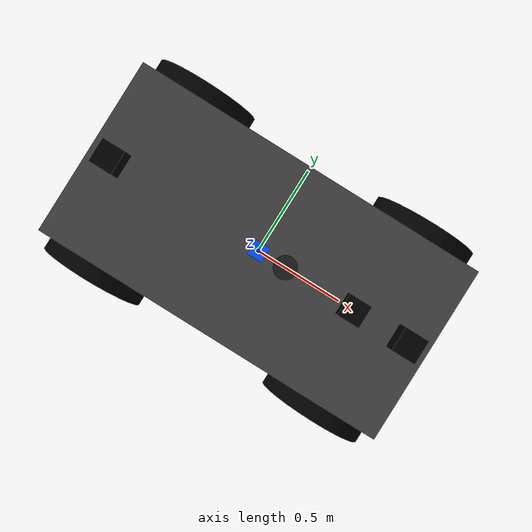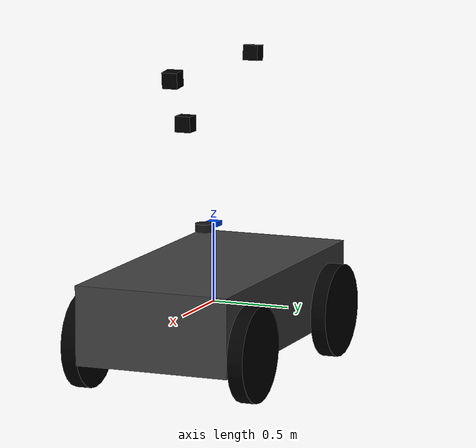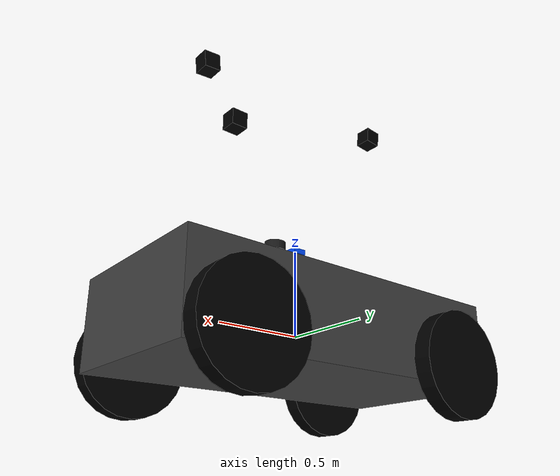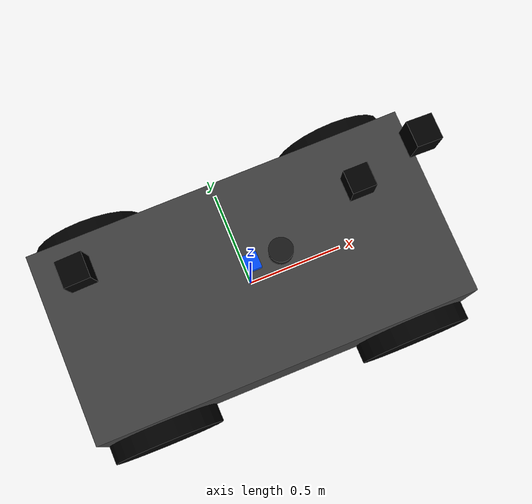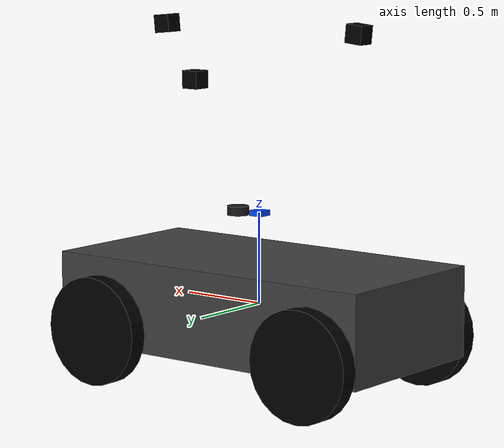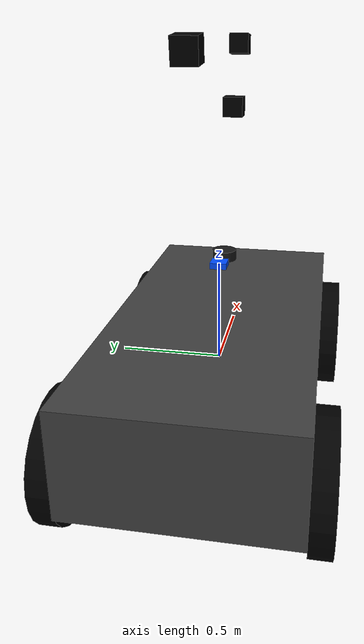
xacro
<?xml version="1.0"?>

<robot name="ackermann_steering_vehicle" xmlns:xacro="http://www.ros.org/wiki/xacro">

  <!-- Arguments -->
  <xacro:arg name="body_length" default="2.0" />
  <xacro:arg name="body_width" default="1.0" />
  <xacro:arg name="body_height" default="0.5" />
  <xacro:arg name="body_density" default="1000.0" />
  <xacro:arg name="wheel_radius" default="0.3" />
  <xacro:arg name="wheel_width" default="0.1" />
  <xacro:arg name="wheel_density" default="1000.0" />
  <xacro:arg name="max_steering_angle" default="0.6108" />
  <xacro:arg name="max_steering_angular_velocity" default="1.570796" />
  <xacro:arg name="max_steering_effort" default="1.0" />
  <xacro:arg name="max_velocity" default="1.0" />
  <xacro:arg name="max_effort" default="10.0" />
  <xacro:arg name="camera_box_size" default="0.1" />
  <xacro:arg name="camera_height" default="1.5" />
  <xacro:arg name="camera_pitch" default="0.1" />
  <xacro:arg name="camera_setback" default="0.3" />
  <xacro:arg name="camera_fov" default="1.396263" />
  <xacro:arg name="camera_fps" default="30" />
  <xacro:arg name="image_width" default="640" />
  <xacro:arg name="image_height" default="480" />
  <xacro:arg name="object_camera_height" default="1.2" />
  <xacro:arg name="object_camera_pitch" default="0.0" />
  <xacro:arg name="object_camera_setback" default="0.5" />
  <xacro:arg name="object_camera_fov" default="1.2217305" />

  <!-- Mathematical Constants -->
  <xacro:property name="PI" value="3.14159265"/>

  <!-- Vehicle Properties -->
  <xacro:property name="body_length" value="$(arg body_length)"/>
  <xacro:property name="body_width" value="$(arg body_width)"/>
  <xacro:property name="body_height" value="$(arg body_height)"/>
  <xacro:property name="body_density" value="$(arg body_density)"/>
  <xacro:property name="wheel_radius" value="$(arg wheel_radius)"/>
  <xacro:property name="wheel_width" value="$(arg wheel_width)"/>
  <xacro:property name="wheel_density" value="$(arg wheel_density)"/>
  <xacro:property name="max_steering_angle" value="$(arg max_steering_angle)"/>
  <xacro:property name="max_steering_angular_velocity" value="$(arg max_steering_angular_velocity)"/>
  <xacro:property name="max_steering_effort" value="$(arg max_steering_effort)"/>
  <xacro:property name="max_velocity" value="$(arg max_velocity)"/>
  <xacro:property name="max_effort" value="$(arg max_effort)"/>
  <xacro:property name="camera_box_size" value="$(arg camera_box_size)"/>
  <xacro:property name="camera_height" value="$(arg camera_height)"/>
  <xacro:property name="camera_pitch" value="$(arg camera_pitch)"/>
  <xacro:property name="camera_setback" value="$(arg camera_setback)"/>
  <xacro:property name="camera_fov" value="$(arg camera_fov)"/>
  <xacro:property name="camera_fps" value="$(arg camera_fps)"/>
  <xacro:property name="image_width" value="$(arg image_width)"/>
  <xacro:property name="image_height" value="$(arg image_height)"/>
  <xacro:property name="object_camera_height" value="$(arg object_camera_height)"/>
  <xacro:property name="object_camera_pitch" value="$(arg object_camera_pitch)"/>
  <xacro:property name="object_camera_setback" value="$(arg object_camera_setback)"/>
  <xacro:property name="object_camera_fov" value="$(arg object_camera_fov)"/>

  <xacro:property name="body_mass" value="${body_density * body_length * body_height * body_width}"/>
  <xacro:property name="body_inertia_x" value="${1.0/12.0 * body_mass * (body_height*body_height + body_width*body_width)}"/>
  <xacro:property name="body_inertia_y" value="${1.0/12.0 * body_mass * (body_length*body_length + body_height*body_height)}"/>
  <xacro:property name="body_inertia_z" value="${1.0/12.0 * body_mass * (body_length*body_length + body_width*body_width)}"/>
  <xacro:property name="wheel_separation" value="${body_width + wheel_width}"/>
  <xacro:property name="wheel_offset" value="${body_length/2 - wheel_radius}"/>
  <xacro:property name="wheel_mass" value="${wheel_density * PI * wheel_radius * wheel_radius * wheel_width}"/>
  <xacro:property name="wheel_inertia_x" value="${1.0/12.0 * wheel_mass * (3*wheel_radius*wheel_radius + wheel_width*wheel_width)}"/>
  <xacro:property name="wheel_inertia_y" value="${1.0/12.0 * wheel_mass * (3*wheel_radius*wheel_radius + wheel_width*wheel_width)}"/>
  <xacro:property name="wheel_inertia_z" value="${1.0/2.0 * wheel_mass * wheel_radius * wheel_radius}"/>
  <xacro:property name="max_wheel_angular_velocity" value="${max_velocity / wheel_radius}"/>

  <!-- Links -->

  <!-- Body Link -->
  <link name="body_link">
    <visual>
      <origin xyz="0.0 0.0 0.0" rpy="0.0 0.0 0.0"/>
      <geometry>
        <box size="${body_length} ${body_width} ${body_height}"/>
      </geometry>
      <material name="body_material">
        <color rgba="0.25 0.25 0.25 1.0"/>
      </material>
    </visual>
    <collision>
      <origin xyz="0.0 0.0 0.0" rpy="0.0 0.0 0.0"/>
      <geometry>
        <box size="${body_length} ${body_width} ${body_height}"/>
      </geometry>
    </collision>
    <inertial>
      <mass value="${body_mass}"/>
      <inertia ixx="${body_inertia_x}" ixy="0.0" ixz="0.0" iyy="${body_inertia_y}" iyz="0" izz="${body_inertia_z}"/>
      <origin xyz="0 0 0" rpy="0 0 0"/>
    </inertial>
  </link>

  <!-- Front Left Wheel -->
  <link name="front_left_wheel_link">
    <visual>
      <origin xyz="0.0 0.0 0.0" rpy="1.570795 0.0 0.0"/>
      <geometry>
        <cylinder radius="${wheel_radius}" length="${wheel_width}"/>
      </geometry>
      <material name="wheel_material">
        <color rgba="0.0 0.0 0.0 1.0"/>
      </material>
    </visual>
    <collision>
      <origin xyz="0.0 0.0 0.0" rpy="1.570795 0.0 0.0"/>
      <geometry>
        <cylinder radius="${wheel_radius}" length="${wheel_width}"/>
      </geometry>
    </collision>
    <inertial>
      <mass value="${wheel_mass}"/>
      <inertia ixx="${wheel_inertia_x}" ixy="0.0" ixz="0.0" iyy="${wheel_inertia_y}" iyz="0" izz="${wheel_inertia_z}"/>
      <origin xyz="0.0 0.0 0.0" rpy="1.570795 0.0 0.0"/>
    </inertial>
  </link>

    <!-- Front Left Wheel Steering -->
  <link name="front_left_steering_link">
    <visual>
      <origin xyz="0.0 0.0 0.0" rpy="1.570795 0.0 0.0"/>
      <geometry>
        <cylinder length="0.001" radius="0.01"/>
      </geometry>
      <material name="wheel_material">
        <color rgba="0.0 0.0 0.0 1.0"/>
      </material>
    </visual>
    <collision>
      <origin xyz="0.0 0.0 0.0" rpy="1.570795 0.0 0.0"/>
      <geometry>
        <cylinder length="0.001" radius="0.01"/>
      </geometry>
    </collision>
    <inertial>
      <mass value="0.01"/>
      <inertia ixx="0.0" ixy="0.0" ixz="0.0" iyy="0.0" iyz="0.0" izz="0.0"/>
      <origin xyz="0.0 0.0 0.0" rpy="1.570795 0.0 0.0"/>
    </inertial>
  </link>

  <!-- Front Right Wheel -->
  <link name="front_right_wheel_link">
    <visual>
      <origin xyz="0.0 0.0 0.0" rpy="1.570795 0.0 0.0"/>
      <geometry>
        <cylinder radius="${wheel_radius}" length="${wheel_width}"/>
      </geometry>
      <material name="wheel_material">
        <color rgba="0.0 0.0 0.0 1.0"/>
      </material>
    </visual>
    <collision>
      <origin xyz="0.0 0.0 0.0" rpy="1.570795 0.0 0.0"/>
      <geometry>
        <cylinder radius="${wheel_radius}" length="${wheel_width}"/>
      </geometry>
    </collision>
    <inertial>
      <mass value="${wheel_mass}"/>
      <inertia ixx="${wheel_inertia_x}" ixy="0.0" ixz="0.0" iyy="${wheel_inertia_y}" iyz="0" izz="${wheel_inertia_z}"/>
      <origin xyz="0.0 0.0 0.0" rpy="1.570795 0.0 0.0"/>
    </inertial>
  </link>

  <!-- Front Right Wheel Steering -->
  <link name="front_right_steering_link">
    <visual>
      <origin xyz="0.0 0.0 0.0" rpy="1.570795 0.0 0.0"/>
      <geometry>
        <cylinder length="0.001" radius="0.01"/>
      </geometry>
      <material name="wheel_material">
        <color rgba="0.0 0.0 0.0 1.0"/>
      </material>
    </visual>
    <collision>
      <origin xyz="0.0 0.0 0.0" rpy="1.570795 0.0 0.0"/>
      <geometry>
        <cylinder length="0.001" radius="0.01"/>
      </geometry>
    </collision>
    <inertial>
      <mass value="0.01"/>
      <inertia ixx="0.0" ixy="0.0" ixz="0.0" iyy="0.0" iyz="0.0" izz="0.0"/>
      <origin xyz="0.0 0.0 0.0" rpy="1.570795 0.0 0.0"/>
    </inertial>
  </link>

  <!-- Rear Left Wheel -->
  <link name="rear_left_wheel_link">
    <visual>
      <origin xyz="0.0 0.0 0.0" rpy="1.570795 0.0 0.0"/>
      <geometry>
        <cylinder radius="${wheel_radius}" length="${wheel_width}"/>
      </geometry>
      <material name="wheel_material">
        <color rgba="0.0 0.0 0.0 1.0"/>
      </material>
    </visual>
    <collision>
      <origin xyz="0.0 0.0 0.0" rpy="1.570795 0.0 0.0"/>
      <geometry>
        <cylinder radius="${wheel_radius}" length="${wheel_width}"/>
      </geometry>
    </collision>
    <inertial>
      <mass value="2"/>
      <inertia ixx="${wheel_inertia_x}" ixy="0.0" ixz="0.0" iyy="${wheel_inertia_y}" iyz="0" izz="${wheel_inertia_z}"/>
      <origin xyz="0.0 0.0 0.0" rpy="1.570795 0.0 0.0"/>
    </inertial>
  </link>

  <!-- Rear Right Wheel -->
  <link name="rear_right_wheel_link">
    <visual>
      <origin xyz="0.0 0.0 0.0" rpy="1.570795 0.0 0.0"/>
      <geometry>
        <cylinder radius="${wheel_radius}" length="${wheel_width}"/>
      </geometry>
      <material name="wheel_material">
        <color rgba="0.0 0.0 0.0 1.0"/>
      </material>
    </visual>
    <collision>
      <origin xyz="0.0 0.0 0.0" rpy="1.570795 0.0 0.0"/>
      <geometry>
        <cylinder radius="${wheel_radius}" length="${wheel_width}"/>
      </geometry>
    </collision>
    <inertial>
      <mass value="2"/>
      <inertia ixx="${wheel_inertia_x}" ixy="0.0" ixz="0.0" iyy="${wheel_inertia_y}" iyz="0" izz="${wheel_inertia_z}"/>
      <origin xyz="0.0 0.0 0.0" rpy="1.570795 0.0 0.0"/>
    </inertial>
  </link>

  <!-- Camera Link -->
  <link name="camera_link">
    <collision>
      <origin xyz="0 0 0" rpy="0 0 0"/>
      <geometry>
        <box size="${camera_box_size} ${camera_box_size} ${camera_box_size}"/>
      </geometry>
    </collision>

    <visual>
      <origin xyz="0 0 0" rpy="0 0 0"/>
      <geometry>
        <box size="${camera_box_size} ${camera_box_size} ${camera_box_size}"/>
      </geometry>

      <material name="camera_material">
        <color rgba="0.0 0.0 0.0 1.0"/>
      </material>
    </visual>

    <inertial>
      <mass value="1e-5" />
      <origin xyz="0 0 0" rpy="0 0 0"/>
      <inertia ixx="1e-6" ixy="0" ixz="0" iyy="1e-6" iyz="0" izz="1e-6" />
    </inertial>
  </link>

  <!-- Object Detection Camera Link (normal 70 deg hfov, front-facing) -->
  <link name="object_camera_link">
    <collision>
      <origin xyz="0 0 0" rpy="0 0 0"/>
      <geometry>
        <box size="${camera_box_size} ${camera_box_size} ${camera_box_size}"/>
      </geometry>
    </collision>

    <visual>
      <origin xyz="0 0 0" rpy="0 0 0"/>
      <geometry>
        <box size="${camera_box_size} ${camera_box_size} ${camera_box_size}"/>
      </geometry>

      <material name="object_camera_material">
        <color rgba="0.0 0.0 0.0 1.0"/>
      </material>
    </visual>

    <inertial>
      <mass value="1e-5" />
      <origin xyz="0 0 0" rpy="0 0 0"/>
      <inertia ixx="1e-6" ixy="0" ixz="0" iyy="1e-6" iyz="0" izz="1e-6" />
    </inertial>
  </link>

  <!-- Rear Camera Link -->
  <link name="rear_camera_link">
    <collision>
      <origin xyz="0 0 0" rpy="0 0 0"/>
      <geometry>
        <box size="${camera_box_size} ${camera_box_size} ${camera_box_size}"/>
      </geometry>
    </collision>

    <visual>
      <origin xyz="0 0 0" rpy="0 0 0"/>
      <geometry>
        <box size="${camera_box_size} ${camera_box_size} ${camera_box_size}"/>
      </geometry>

      <material name="rear_camera_material">
        <color rgba="0.0 0.0 0.0 1.0"/>
      </material>
    </visual>

    <inertial>
      <mass value="1e-5" />
      <origin xyz="0 0 0" rpy="0 0 0"/>
      <inertia ixx="1e-6" ixy="0" ixz="0" iyy="1e-6" iyz="0" izz="1e-6" />
    </inertial>
  </link>

  <link name="lidar_link">
    <visual>
      <origin xyz="0 0 0" rpy="0 0 0"/>
      <geometry>
        <cylinder radius="0.06" length="0.05"/>
      </geometry>
      <material name="lidar_material">
        <color rgba="0.1 0.1 0.1 1.0"/>
      </material>
    </visual>

    <collision>
      <origin xyz="0 0 0" rpy="0 0 0"/>
      <geometry>
        <cylinder radius="0.06" length="0.05"/>
      </geometry>
    </collision>

    <inertial>
      <mass value="0.1"/>
      <origin xyz="0 0 0" rpy="0 0 0"/>
      <inertia ixx="1e-4" ixy="0" ixz="0" iyy="1e-4" iyz="0" izz="1e-4"/>
    </inertial>
  </link>

  <link name="gps_link">
    <visual>
      <origin xyz="0 0 0" rpy="0 0 0"/>
      <geometry>
        <box size="0.08 0.08 0.03"/>
      </geometry>
      <material name="gps_material">
        <color rgba="0.0 0.3 1.0 1.0"/>
      </material>
    </visual>

    <collision>
      <origin xyz="0 0 0" rpy="0 0 0"/>
      <geometry>
        <box size="0.08 0.08 0.03"/>
      </geometry>
    </collision>

    <inertial>
      <mass value="0.05"/>
      <origin xyz="0 0 0" rpy="0 0 0"/>
      <inertia ixx="1e-5" ixy="0" ixz="0" iyy="1e-5" iyz="0" izz="1e-5"/>
    </inertial>
  </link>

<!-- GPS Fixed Joint -->
  <joint name="gps_joint" type="fixed">
    <origin xyz="0 0 ${body_height/2 + 0.25}" rpy="0 0 0"/>
    <parent link="body_link"/>
    <child link="gps_link"/>
  </joint>

<!-- LiDAR Fixed Joint -->
  <joint name="lidar_joint" type="fixed">
    <origin xyz="0.15 0 ${body_height/2 + 0.25}" rpy="0 0 0"/>
    <parent link="body_link"/>
    <child link="lidar_link"/>
  </joint>

  <!-- Joints -->

  <!-- Front Left Steering Joint -->
  <joint name="front_left_steering_joint" type="revolute">
    <origin xyz="${wheel_offset} ${wheel_separation/2} -${wheel_radius/2}" rpy="0 0 0"/>
    <parent link="body_link"/>
    <child link="front_left_steering_link"/>
    <axis xyz="0 0 1"/>
    <limit effort="${max_steering_effort}" lower="${-max_steering_angle}" upper="${max_steering_angle}" velocity="${max_steering_angular_velocity}"/>
    <dynamics damping="0.1" friction="0.1"/>
  </joint>

  <!-- Front Left Wheel Joint -->
  <joint name="front_left_wheel_joint" type="continuous">
    <origin xyz="0 0 0" rpy="0 0 0"/>
    <parent link="front_left_steering_link"/>
    <child link="front_left_wheel_link"/>
    <axis xyz="0 1 0"/>
    <limit effort="${max_effort}" velocity="${max_wheel_angular_velocity}"/>
    <dynamics damping="0.1" friction="0.1"/>
  </joint>

  <!-- Front Right Steering Joint -->
  <joint name="front_right_steering_joint" type="revolute">
    <origin xyz="${wheel_offset} ${-wheel_separation/2} -${wheel_radius/2}" rpy="0 0 0"/>
    <parent link="body_link"/>
    <child link="front_right_steering_link"/>
    <axis xyz="0 0 1"/>
    <limit effort="${max_steering_effort}" lower="${-max_steering_angle}" upper="${max_steering_angle}" velocity="${max_steering_angular_velocity}"/>
    <dynamics damping="0.1" friction="0.1"/>
  </joint>

  <!-- Front Right Wheel Joint -->
  <joint name="front_right_wheel_joint" type="continuous">
    <origin xyz="0 0 0" rpy="0 0 0"/>
    <parent link="front_right_steering_link"/>
    <child link="front_right_wheel_link"/>
    <axis xyz="0 1 0"/>
    <limit effort="${max_effort}" velocity="${max_wheel_angular_velocity}"/>
    <dynamics damping="0.1" friction="0.1"/>
  </joint>

  <!-- Rear Left Wheel Joint -->
  <joint name="rear_left_wheel_joint" type="continuous">
    <origin xyz="-${wheel_offset} ${wheel_separation/2} -${wheel_radius/2}" rpy="0 0 0"/>
    <parent link="body_link"/>
    <child link="rear_left_wheel_link"/>
    <axis xyz="0 1 0"/>
    <limit effort="${max_effort}" velocity="${max_wheel_angular_velocity}"/>
    <dynamics damping="0.1" friction="0.1"/>
  </joint>

  <!-- Rear Right Wheel Joint -->
  <joint name="rear_right_wheel_joint" type="continuous">
    <origin xyz="-${wheel_offset} ${-wheel_separation/2} -${wheel_radius/2}" rpy="0 0 0"/>
    <parent link="body_link"/>
    <child link="rear_right_wheel_link"/>
    <axis xyz="0 1 0"/>
    <limit effort="${max_effort}" velocity="${max_wheel_angular_velocity}"/>
    <dynamics damping="0.1" friction="0.1"/>
  </joint>

  <!-- Camera Joint -->
  <joint name="camera_joint" type="fixed">
    <axis xyz="0 1 0" />
    <origin xyz="${body_length/2 - camera_box_size/2 - camera_setback} 0.0 ${camera_height}" rpy="0 ${camera_pitch} 0"/>
    <parent link="body_link"/>
    <child link="camera_link"/>
  </joint>

  <!-- Object Detection Camera Joint -->
  <joint name="object_camera_joint" type="fixed">
    <axis xyz="0 1 0" />
    <origin xyz="${body_length/2 - camera_box_size/2 - object_camera_setback} 0.0 ${object_camera_height}" rpy="0 ${object_camera_pitch} 0"/>
    <parent link="body_link"/>
    <child link="object_camera_link"/>
  </joint>

  <!-- Rear Camera Joint -->
  <joint name="rear_camera_joint" type="fixed">
    <axis xyz="0 1 0" />
    <origin xyz="${-(body_length/2 - camera_box_size/2 - camera_setback)} 0.0 ${camera_height}" rpy="0 ${camera_pitch} ${PI}"/>
    <parent link="body_link"/>
    <child link="rear_camera_link"/>
  </joint>

  <gazebo reference="body_link">
    <mu1>0.0001</mu1>
    <mu2>0.0001</mu2>
  </gazebo>

  <gazebo reference="front_right_wheel_link">
    <mu1>100.0</mu1>
    <mu2>100.0</mu2>
  </gazebo>

  <gazebo reference="front_left_wheel_link">
    <mu1>100.0</mu1>
    <mu2>100.0</mu2>
  </gazebo>

  <gazebo reference="rear_right_wheel_link">
    <mu1>100.0</mu1>
    <mu2>100.0</mu2>
  </gazebo>

  <gazebo reference="rear_left_wheel_link">
    <mu1>100.0</mu1>
    <mu2>100.0</mu2>
  </gazebo>

  <!-- Gazebo Control -->
  <ros2_control name="control" type="system">
    <hardware>
      <plugin>gz_ros2_control/GazeboSimSystem</plugin>
    </hardware>

    <joint name="front_left_steering_joint">
      <command_interface name="position">
        <param name="min">${-max_steering_angle}</param>
        <param name="max">${max_steering_angle}</param>
      </command_interface>

      <state_interface name="position"/>
      <state_interface name="velocity"/>
      <state_interface name="effort"/>
    </joint>

    <joint name="front_right_steering_joint">
      <command_interface name="position">
        <param name="min">${-max_steering_angle}</param>
        <param name="max">${max_steering_angle}</param>
      </command_interface>

      <state_interface name="position"/>
      <state_interface name="velocity"/>
      <state_interface name="effort"/>
    </joint>

    <joint name="rear_left_wheel_joint">
      <command_interface name="velocity">
        <param name="min">${-max_wheel_angular_velocity}</param>
        <param name="max">${max_wheel_angular_velocity}</param>
      </command_interface>

      <state_interface name="position"/>
      <state_interface name="velocity"/>
      <state_interface name="effort"/>
    </joint>

    <joint name="rear_right_wheel_joint">
      <command_interface name="velocity">
        <param name="min">${-max_wheel_angular_velocity}</param>
        <param name="max">${max_wheel_angular_velocity}</param>
      </command_interface>

      <state_interface name="position"/>
      <state_interface name="velocity"/>
      <state_interface name="effort"/>
    </joint>
  </ros2_control>

  <!-- Gazebo Plugins -->
  <gazebo>
    <plugin filename="gz_ros2_control-system" name="gz_ros2_control::GazeboSimROS2ControlPlugin">
      <parameters>$(find auto_vehicle)/config/gz_ros2_control.yaml</parameters>
    </plugin>

    <plugin filename="gz-sim-sensors-system" name="gz::sim::systems::Sensors">
      <render_engine>ogre2</render_engine>
    </plugin>

    <plugin filename="gz-sim-imu-system" name="gz::sim::systems::Imu">
    </plugin>

    <plugin filename="ignition-gazebo-odometry-publisher-system"
        name="ignition::gazebo::systems::OdometryPublisher">
      <odom_frame>odom</odom_frame>
      <robot_base_frame>body_link</robot_base_frame> <odom_topic>odom</odom_topic>
      <tf_topic>tf</tf_topic>
      <dimensions>3</dimensions>
    </plugin>

    <plugin filename="ignition-gazebo-navsat-system"
          name="ignition::gazebo::systems::NavSat">
    </plugin>

  </gazebo>

  <!-- Camera -->
  <gazebo reference="camera_link">
    <sensor type="camera" name="vehicle_front_camera">
      <update_rate>${camera_fps}</update_rate>
      <visualize>true</visualize>
      <topic>camera</topic>

      <camera name="head">
        <horizontal_fov>${camera_fov}</horizontal_fov>
        <image>
          <width>${image_width}</width>
          <height>${image_height}</height>
          <format>R8G8B8</format>
        </image>
        <clip>
          <near>0.02</near>
          <far>550</far>
        </clip>
        <noise>
          <type>gaussian</type>
          <mean>0.0</mean>
          <stddev>0.007</stddev>
        </noise>
      </camera>
      <plugin name="camera_controller" filename="libgazebo_ros_camera.so">
        <alwaysOn>true</alwaysOn>
        <updateRate>0.0</updateRate>
        <cameraName>vehicle_front_camera</cameraName>
        <frameName>camera_link</frameName>
        <hackBaseline>0.07</hackBaseline>
        <distortionK1>0.0</distortionK1>
        <distortionK2>0.0</distortionK2>
        <distortionK3>0.0</distortionK3>
        <distortionT1>0.0</distortionT1>
        <distortionT2>0.0</distortionT2>
      </plugin>
    </sensor>
  </gazebo>

  <!-- Object Detection Camera -->
  <gazebo reference="object_camera_link">
    <sensor type="camera" name="vehicle_object_camera">
      <update_rate>${camera_fps}</update_rate>
      <visualize>true</visualize>
      <topic>camera_object</topic>

      <camera name="object">
        <horizontal_fov>${object_camera_fov}</horizontal_fov>
        <image>
          <width>${image_width}</width>
          <height>${image_height}</height>
          <format>R8G8B8</format>
        </image>
        <clip>
          <near>0.02</near>
          <far>550</far>
        </clip>
        <noise>
          <type>gaussian</type>
          <mean>0.0</mean>
          <stddev>0.007</stddev>
        </noise>
      </camera>
      <plugin name="object_camera_controller" filename="libgazebo_ros_camera.so">
        <alwaysOn>true</alwaysOn>
        <updateRate>0.0</updateRate>
        <cameraName>vehicle_object_camera</cameraName>
        <frameName>object_camera_link</frameName>
        <hackBaseline>0.07</hackBaseline>
        <distortionK1>0.0</distortionK1>
        <distortionK2>0.0</distortionK2>
        <distortionK3>0.0</distortionK3>
        <distortionT1>0.0</distortionT1>
        <distortionT2>0.0</distortionT2>
      </plugin>
    </sensor>
  </gazebo>

  <!-- Rear Camera -->
  <gazebo reference="rear_camera_link">
    <sensor type="camera" name="vehicle_rear_camera">
      <update_rate>${camera_fps}</update_rate>
      <visualize>true</visualize>
      <topic>camera_rear</topic>

      <camera name="rear">
        <horizontal_fov>${camera_fov}</horizontal_fov>
        <image>
          <width>${image_width}</width>
          <height>${image_height}</height>
          <format>R8G8B8</format>
        </image>
        <clip>
          <near>0.02</near>
          <far>550</far>
        </clip>
        <noise>
          <type>gaussian</type>
          <mean>0.0</mean>
          <stddev>0.007</stddev>
        </noise>
      </camera>
      <plugin name="rear_camera_controller" filename="libgazebo_ros_camera.so">
        <alwaysOn>true</alwaysOn>
        <updateRate>0.0</updateRate>
        <cameraName>vehicle_rear_camera</cameraName>
        <frameName>rear_camera_link</frameName>
        <hackBaseline>0.07</hackBaseline>
        <distortionK1>0.0</distortionK1>
        <distortionK2>0.0</distortionK2>
        <distortionK3>0.0</distortionK3>
        <distortionT1>0.0</distortionT1>
        <distortionT2>0.0</distortionT2>
      </plugin>
    </sensor>
  </gazebo>

  <!-- IMU sensor -->
  <gazebo reference="body_link">
    <sensor name="imu_sensor" type="imu">
      <always_on>1</always_on>
      <update_rate>50</update_rate>
      <visualize>true</visualize>
      <topic>imu</topic>
      <imu>
      </imu>
    </sensor>
  </gazebo>

  <gazebo reference="lidar_link">
    <sensor name="lidar_sensor" type="gpu_lidar">
      <always_on>1</always_on>
      <update_rate>15</update_rate>
      <visualize>true</visualize>
      <topic>/scan</topic>
      <gz_frame_id>lidar_link</gz_frame_id>

      <lidar>
        <scan>
          <horizontal>
            <samples>720</samples>
            <resolution>1</resolution>
            <min_angle>-3.14159265</min_angle>
            <max_angle>3.14159265</max_angle>
          </horizontal>
        </scan>

        <range>
          <min>0.12</min>
          <max>12.0</max>
          <resolution>0.01</resolution>
        </range>

      </lidar>
    </sensor>
  </gazebo>

  <!-- GPS Sensor -->
  <gazebo reference="gps_link">
    <sensor name="gps_sensor" type="navsat">
      <always_on>1</always_on>
      <update_rate>5</update_rate>
      <visualize>true</visualize>
      <topic>gps/fix</topic>

    </sensor>
  </gazebo>

</robot>
